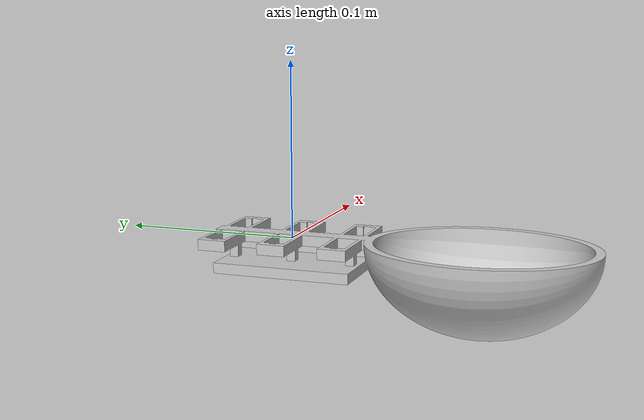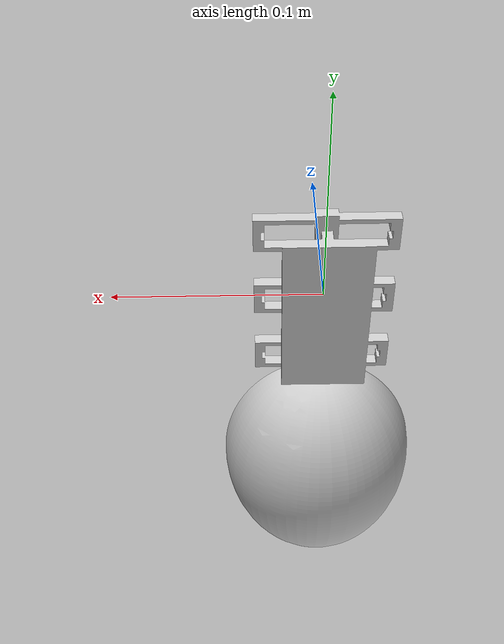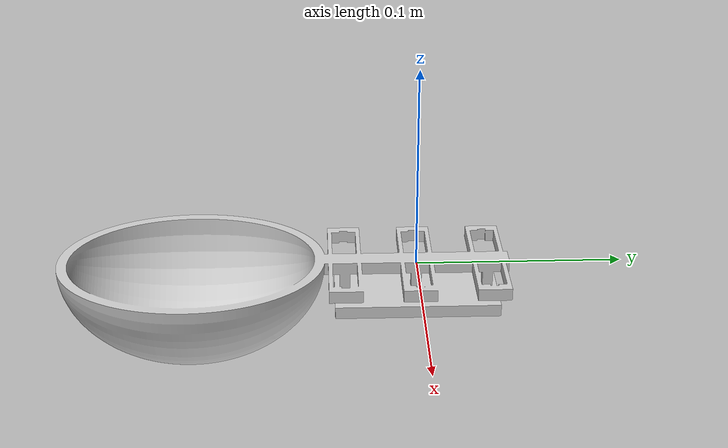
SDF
<?xml version="1.0" ?>
<sdf version="1.6">
  <model name="core">
    <static>false</static>
    <link name="core_link">
      <inertial>
        <mass>0.5</mass>
        <pose>0 0 -0.008 0 0 0</pose>
        <inertia>
          <ixx>0.0003576666666666666</ixx>
          <ixy>0.0</ixy>
          <ixz>0.0</ixz>
          <iyy>8.683333333333332e-05</iyy>
          <iyz>0.0</iyz>
          <izz>0.00040416666666666666</izz>
        </inertia>
      </inertial>
      <visual name="core_visual">
        <geometry>
          <mesh>
            <uri>model://meshes/core.dae</uri>
          </mesh>
        </geometry>
      </visual>
      <collision name="core_collision">
        <geometry>
          <mesh>
            <uri>model://meshes/core.dae</uri>
          </mesh>
        </geometry>
      </collision>
    </link>
  </model>
</sdf>
